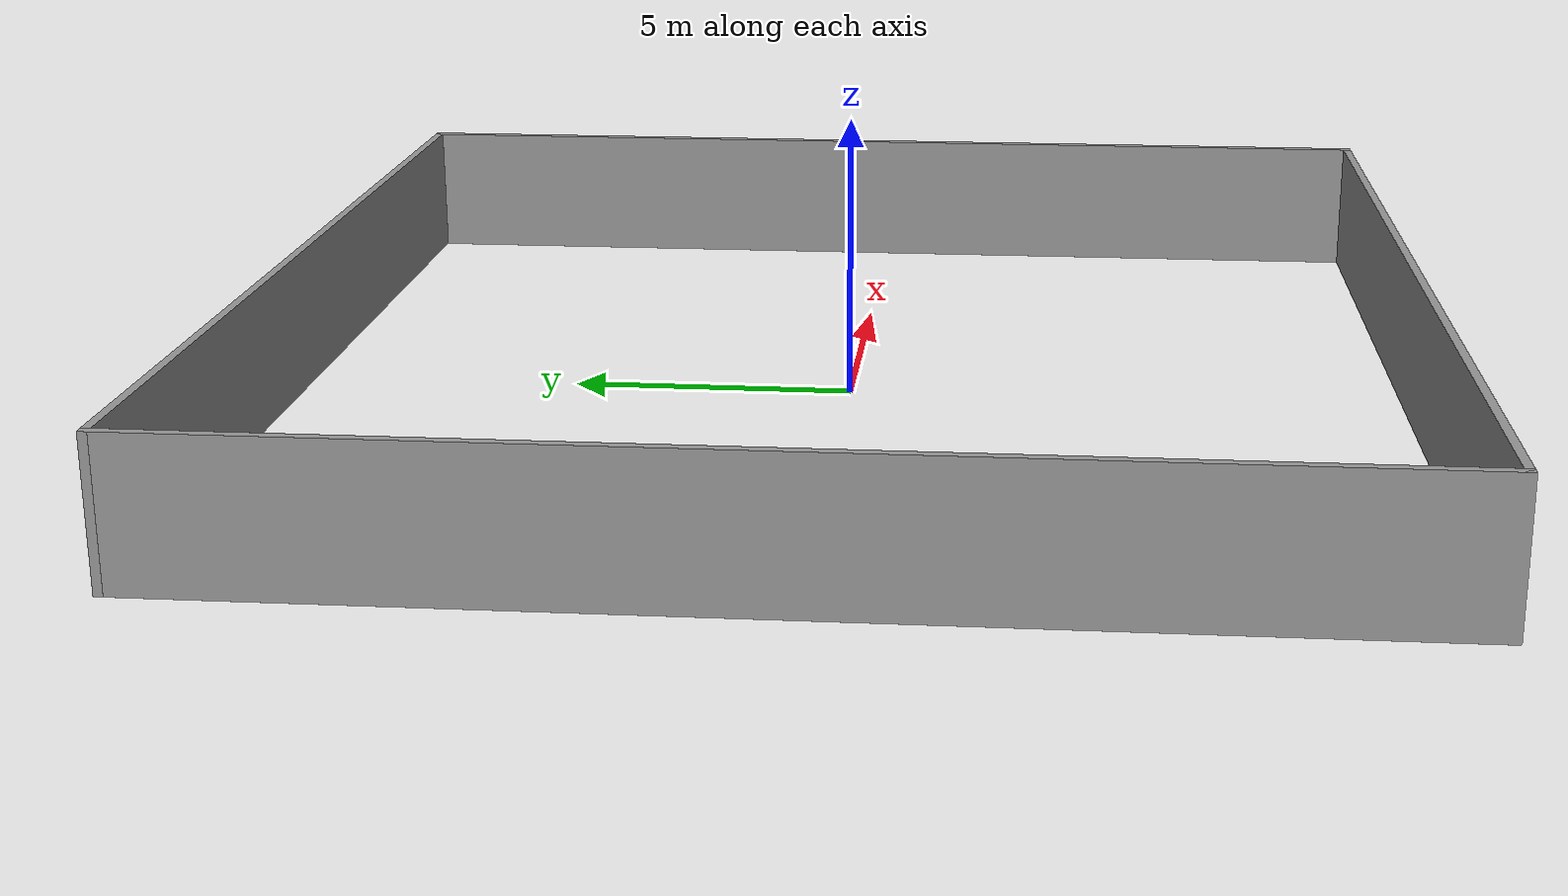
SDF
<sdf version='1.5'>
    <model name='labIoTOT'>
      <pose>-0.096263 0.027558 0 0 -0 0</pose>
      <link name='Wall_10'>
        <collision name='Wall_10_Collision'>
          <geometry>
            <box>
              <size>20.0 0.15 2.5</size>
            </box>
          </geometry>
          <pose>0 0 1.25 0 -0 0</pose>
          <max_contacts>10</max_contacts>
          <surface>
            <contact>
              <ode/>
            </contact>
            <bounce/>
            <friction>
              <torsional>
                <ode/>
              </torsional>
              <ode/>
            </friction>
          </surface>
        </collision>
        <visual name='Wall_10_Visual'>
          <pose>0 0 1.25 0 -0 0</pose>
          <geometry>
            <box>
              <size>20.0 0.15 2.5</size>
            </box>
          </geometry>
          <material>
            <script>
              <uri>file://media/materials/scripts/gazebo.material</uri>
              <name>Gazebo/Grey</name>
            </script>
            <ambient>1 1 1 1</ambient>
          </material>
          <meta>
            <layer>0</layer>
          </meta>
        </visual>
        <pose>0 -9.925 0 0 -0 0</pose>
        <self_collide>0</self_collide>
        <enable_wind>0</enable_wind>
        <kinematic>0</kinematic>
      </link>
      <link name='Wall_11'>
        <collision name='Wall_11_Collision'>
          <geometry>
            <box>
              <size>20.0 0.15 2.5</size>
            </box>
          </geometry>
          <pose>0 0 1.25 0 -0 0</pose>
          <max_contacts>10</max_contacts>
          <surface>
            <contact>
              <ode/>
            </contact>
            <bounce/>
            <friction>
              <torsional>
                <ode/>
              </torsional>
              <ode/>
            </friction>
          </surface>
        </collision>
        <visual name='Wall_11_Visual'>
          <pose>0 0 1.25 0 -0 0</pose>
          <geometry>
            <box>
              <size>20.0 0.15 2.5</size>
            </box>
          </geometry>
          <material>
            <script>
              <uri>file://media/materials/scripts/gazebo.material</uri>
              <name>Gazebo/Grey</name>
            </script>
            <ambient>1 1 1 1</ambient>
          </material>
          <meta>
            <layer>0</layer>
          </meta>
        </visual>
        <pose>9.925 -0 0 0 -0 1.5708</pose>
        <self_collide>0</self_collide>
        <enable_wind>0</enable_wind>
        <kinematic>0</kinematic>
      </link>
      <link name='Wall_12'>
        <collision name='Wall_12_Collision'>
          <geometry>
            <box>
              <size>20.0 0.15 2.5</size>
            </box>
          </geometry>
          <pose>0 0 1.25 0 -0 0</pose>
          <max_contacts>10</max_contacts>
          <surface>
            <contact>
              <ode/>
            </contact>
            <bounce/>
            <friction>
              <torsional>
                <ode/>
              </torsional>
              <ode/>
            </friction>
          </surface>
        </collision>
        <visual name='Wall_12_Visual'>
          <pose>0 0 1.25 0 -0 0</pose>
          <geometry>
            <box>
              <size>20.0 0.15 2.5</size>
            </box>
          </geometry>
          <material>
            <script>
              <uri>file://media/materials/scripts/gazebo.material</uri>
              <name>Gazebo/Grey</name>
            </script>
            <ambient>1 1 1 1</ambient>
          </material>
          <meta>
            <layer>0</layer>
          </meta>
        </visual>
        <pose>0 9.925 0 0 -0 3.14159</pose>
        <self_collide>0</self_collide>
        <enable_wind>0</enable_wind>
        <kinematic>0</kinematic>
      </link>
      <link name='Wall_7'>
        <collision name='Wall_7_Collision'>
          <geometry>
            <box>
              <size>20.0 0.15 2.5</size>
            </box>
          </geometry>
          <pose>0 0 1.25 0 -0 0</pose>
          <max_contacts>10</max_contacts>
          <surface>
            <contact>
              <ode/>
            </contact>
            <bounce/>
            <friction>
              <torsional>
                <ode/>
              </torsional>
              <ode/>
            </friction>
          </surface>
        </collision>
        <visual name='Wall_7_Visual'>
          <pose>0 0 1.25 0 -0 0</pose>
          <geometry>
            <box>
              <size>20.0 0.15 2.5</size>
            </box>
          </geometry>
          <material>
            <script>
              <uri>file://media/materials/scripts/gazebo.material</uri>
              <name>Gazebo/Grey</name>
            </script>
            <ambient>1 1 1 1</ambient>
          </material>
          <meta>
            <layer>0</layer>
          </meta>
        </visual>
        <pose>-9.925 -0 0 0 -0 -1.5708</pose>
        <self_collide>0</self_collide>
        <enable_wind>0</enable_wind>
        <kinematic>0</kinematic>
      </link>
      <static>1</static>
    </model>
</sdf>
